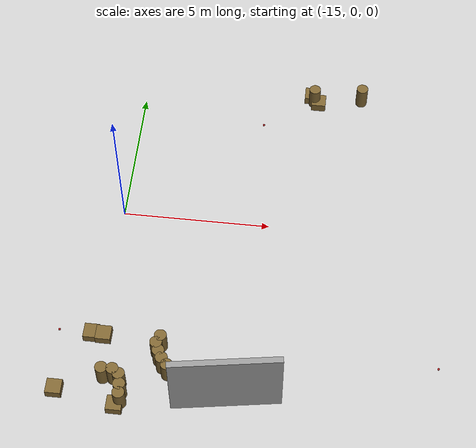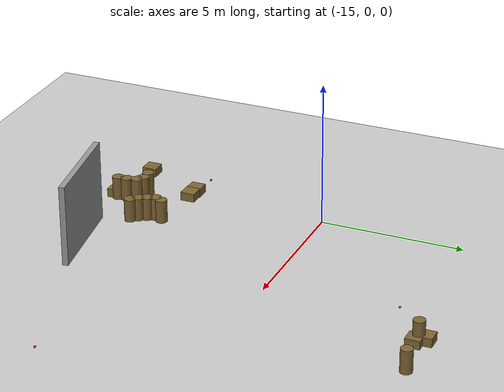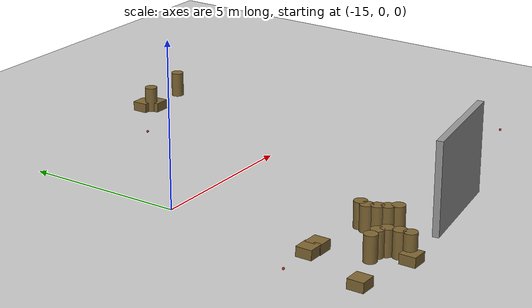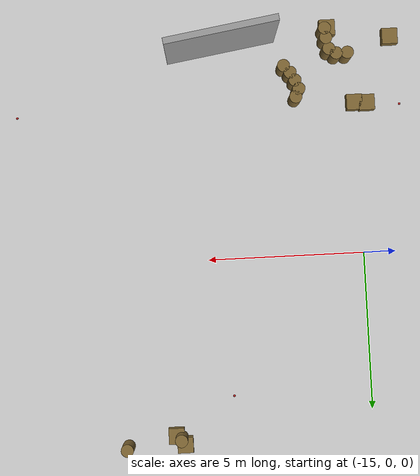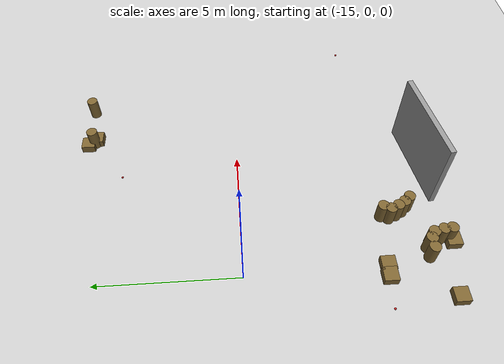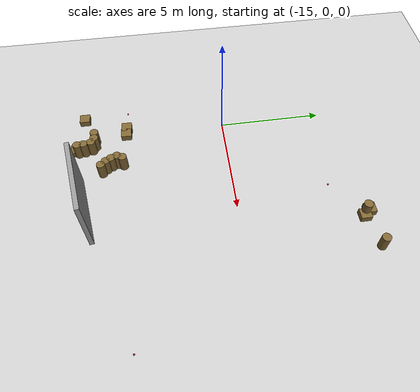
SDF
<sdf version="1.7">
 <world name="default">
  <model name="ground_plane">
   <static>1</static>
   <link name="link">
    <collision name="collision">
     <geometry><plane><normal>0 0 1</normal><size>100 100</size></plane></geometry>
     <surface><friction><ode><mu>100</mu><mu2>50</mu2></ode></friction></surface>
    </collision>
    <visual name="visual">
     <cast_shadows>0</cast_shadows>
     <geometry><plane><normal>0 0 1</normal><size>100 100</size></plane></geometry>
     <material>
      <script><uri>file://media/materials/scripts/gazebo.material</uri><name>Gazebo/Grey</name></script>
     </material>
    </visual>
   </link>
  </model>
  <model name="grey_wall_3.5">
   <link name="link">
    <pose>0 0 1.4 0 -0 0</pose>
    <inertial>
     <mass>1</mass>
     <inertia><ixx>1</ixx><ixy>0</ixy><ixz>0</ixz><iyy>1</iyy><iyz>0</iyz><izz>1</izz></inertia>
    </inertial>
    <visual name="visual">
     <cast_shadows>0</cast_shadows>
     <geometry><box><size>3.5 0.2 2.8</size></box></geometry>
     <material>
      <script>
       <uri>model://grey_wall/materials/scripts</uri>
       <uri>model://grey_wall/materials/textures</uri>
       <name>vrc/grey_wall</name>
      </script>
      <shader type="vertex"><normal_map>__default__</normal_map></shader>
      <ambient>1 1 1 1</ambient>
      <diffuse>1 1 1 1</diffuse>
      <specular>0 0 0 1</specular>
      <emissive>0 0 0 1</emissive>
     </material>
    </visual>
    <collision name="collision">
     <geometry><box><size>3.5 0.2 2.8</size></box></geometry>
     <surface>
      <friction>
       <ode><mu>1</mu><mu2>1</mu2><fdir1>0 0 0</fdir1><slip1>0</slip1><slip2>0</slip2></ode>
       <torsional>
        <coefficient>1</coefficient>
        <patch_radius>0</patch_radius>
        <surface_radius>0</surface_radius>
        <use_patch_radius>1</use_patch_radius>
        <ode><slip>0</slip></ode>
       </torsional>
      </friction>
      <bounce><restitution_coefficient>0</restitution_coefficient><threshold>1e+06</threshold></bounce>
      <contact>
       <collide_without_contact>0</collide_without_contact>
       <collide_without_contact_bitmask>1</collide_without_contact_bitmask>
       <collide_bitmask>1</collide_bitmask>
       <ode>
        <soft_cfm>0</soft_cfm>
        <soft_erp>0.2</soft_erp>
        <kp>1e+13</kp>
        <kd>1</kd>
        <max_vel>0.01</max_vel>
        <min_depth>0</min_depth>
       </ode>
       <bullet>
        <split_impulse>1</split_impulse>
        <split_impulse_penetration_threshold>-0.01</split_impulse_penetration_threshold>
        <soft_cfm>0</soft_cfm>
        <soft_erp>0.2</soft_erp>
        <kp>1e+13</kp>
        <kd>1</kd>
       </bullet>
      </contact>
     </surface>
    </collision>
   </link>
   <static>1</static>
   <pose>-10.6984 -6.76515 0 0 -0 0.156615</pose>
  </model>
  <model name="mini_cylinder_0_clone_0_clone_4">
   <link name="link">
    <inertial>
     <mass>1</mass>
     <inertia><ixx>0.145833</ixx><ixy>0</ixy><ixz>0</ixz><iyy>0.145833</iyy><iyz>0</iyz><izz>0.125</izz></inertia>
    </inertial>
    <visual name="visual">
     <geometry><cylinder><radius>0.2</radius><length>0.8</length></cylinder></geometry>
     <material>
      <script><name>Gazebo/Grey</name><uri>file://media/materials/scripts/gazebo.material</uri></script>
      <shader type="vertex"><normal_map>__default__</normal_map></shader>
      <ambient>0.5 0.4 0.2 1</ambient>
      <diffuse>0.7 0.7 0.7 1</diffuse>
      <specular>0.01 0.01 0.01 1</specular>
      <emissive>0 0 0 1</emissive>
     </material>
    </visual>
    <collision name="collision">
     <geometry><cylinder><radius>0.2</radius><length>0.8</length></cylinder></geometry>
     <surface>
      <friction>
       <ode><mu>1</mu><mu2>1</mu2><fdir1>0 0 0</fdir1><slip1>0</slip1><slip2>0</slip2></ode>
       <torsional>
        <coefficient>1</coefficient>
        <patch_radius>0</patch_radius>
        <surface_radius>0</surface_radius>
        <use_patch_radius>1</use_patch_radius>
        <ode><slip>0</slip></ode>
       </torsional>
      </friction>
      <bounce><restitution_coefficient>0</restitution_coefficient><threshold>1e+06</threshold></bounce>
      <contact>
       <collide_without_contact>0</collide_without_contact>
       <collide_without_contact_bitmask>1</collide_without_contact_bitmask>
       <collide_bitmask>1</collide_bitmask>
       <ode>
        <soft_cfm>0</soft_cfm>
        <soft_erp>0.2</soft_erp>
        <kp>1e+13</kp>
        <kd>1</kd>
        <max_vel>0.01</max_vel>
        <min_depth>0</min_depth>
       </ode>
       <bullet>
        <split_impulse>1</split_impulse>
        <split_impulse_penetration_threshold>-0.01</split_impulse_penetration_threshold>
        <soft_cfm>0</soft_cfm>
        <soft_erp>0.2</soft_erp>
        <kp>1e+13</kp>
        <kd>1</kd>
       </bullet>
      </contact>
     </surface>
    </collision>
   </link>
   <static>1</static>
   <pose>-8.86632 5.59316 0.4 0 -0 0</pose>
  </model>
  <model name="target_2">
   <link name="link">
    <pose>0 0 0.0375 0 -0 0</pose>
    <inertial>
     <mass>0.1467</mass>
     <inertia>
      <ixx>8.25187e-05</ixx>
      <ixy>0</ixy>
      <ixz>0</ixz>
      <iyy>8.25187e-05</iyy>
      <iyz>0</iyz>
      <izz>8.25187e-05</izz>
     </inertia>
    </inertial>
    <velocity_decay><linear>0</linear><angular>0.005</angular></velocity_decay>
    <visual name="visual">
     <geometry><sphere><radius>0.0375</radius></sphere></geometry>
     <material>
      <script><uri>file://media/materials/scripts/gazebo.material</uri><name>Gazebo/Red</name></script>
      <shader type="pixel"/>
     </material>
    </visual>
    <collision name="collision">
     <geometry><sphere><radius>0.0375</radius></sphere></geometry>
     <surface>
      <friction>
       <ode><mu>1</mu><mu2>1</mu2><fdir1>0 0 0</fdir1><slip1>0</slip1><slip2>0</slip2></ode>
       <torsional>
        <coefficient>1</coefficient>
        <patch_radius>0</patch_radius>
        <surface_radius>0.01</surface_radius>
        <use_patch_radius>0</use_patch_radius>
        <ode><slip>0</slip></ode>
       </torsional>
      </friction>
      <bounce><restitution_coefficient>0</restitution_coefficient><threshold>1e+06</threshold></bounce>
      <contact>
       <collide_without_contact>0</collide_without_contact>
       <collide_without_contact_bitmask>1</collide_without_contact_bitmask>
       <collide_bitmask>1</collide_bitmask>
       <ode>
        <soft_cfm>0</soft_cfm>
        <soft_erp>0.2</soft_erp>
        <kp>100000</kp>
        <kd>100</kd>
        <max_vel>100</max_vel>
        <min_depth>0.001</min_depth>
       </ode>
       <bullet>
        <split_impulse>1</split_impulse>
        <split_impulse_penetration_threshold>-0.01</split_impulse_penetration_threshold>
        <soft_cfm>0</soft_cfm>
        <soft_erp>0.2</soft_erp>
        <kp>100000</kp>
        <kd>100</kd>
       </bullet>
      </contact>
     </surface>
    </collision>
   </link>
   <static>0</static>
   <pose>-10.6016 4.37211 -0.001014 0 -0 0</pose>
  </model>
  <model name="target_4">
   <link name="link">
    <pose>0 0 0.0375 0 -0 0</pose>
    <inertial>
     <mass>0.1467</mass>
     <inertia>
      <ixx>8.25187e-05</ixx>
      <ixy>0</ixy>
      <ixz>0</ixz>
      <iyy>8.25187e-05</iyy>
      <iyz>0</iyz>
      <izz>8.25187e-05</izz>
     </inertia>
    </inertial>
    <velocity_decay><linear>0</linear><angular>0.005</angular></velocity_decay>
    <visual name="visual">
     <geometry><sphere><radius>0.0375</radius></sphere></geometry>
     <material>
      <script><uri>file://media/materials/scripts/gazebo.material</uri><name>Gazebo/Red</name></script>
      <shader type="pixel"/>
     </material>
    </visual>
    <collision name="collision">
     <geometry><sphere><radius>0.0375</radius></sphere></geometry>
     <surface>
      <friction>
       <ode><mu>1</mu><mu2>1</mu2><fdir1>0 0 0</fdir1><slip1>0</slip1><slip2>0</slip2></ode>
       <torsional>
        <coefficient>1</coefficient>
        <patch_radius>0</patch_radius>
        <surface_radius>0.01</surface_radius>
        <use_patch_radius>0</use_patch_radius>
        <ode><slip>0</slip></ode>
       </torsional>
      </friction>
      <bounce><restitution_coefficient>0</restitution_coefficient><threshold>1e+06</threshold></bounce>
      <contact>
       <collide_without_contact>0</collide_without_contact>
       <collide_without_contact_bitmask>1</collide_without_contact_bitmask>
       <collide_bitmask>1</collide_bitmask>
       <ode>
        <soft_cfm>0</soft_cfm>
        <soft_erp>0.2</soft_erp>
        <kp>100000</kp>
        <kd>100</kd>
        <max_vel>100</max_vel>
        <min_depth>0.001</min_depth>
       </ode>
       <bullet>
        <split_impulse>1</split_impulse>
        <split_impulse_penetration_threshold>-0.01</split_impulse_penetration_threshold>
        <soft_cfm>0</soft_cfm>
        <soft_erp>0.2</soft_erp>
        <kp>100000</kp>
        <kd>100</kd>
       </bullet>
      </contact>
     </surface>
    </collision>
   </link>
   <static>0</static>
   <pose>-4.06717 -4.87999 -0.001014 0 -0 0</pose>
  </model>
  <model name="target_5">
   <link name="link">
    <pose>0 0 0.0375 0 -0 0</pose>
    <inertial>
     <mass>0.1467</mass>
     <inertia>
      <ixx>8.25187e-05</ixx>
      <ixy>0</ixy>
      <ixz>0</ixz>
      <iyy>8.25187e-05</iyy>
      <iyz>0</iyz>
      <izz>8.25187e-05</izz>
     </inertia>
    </inertial>
    <velocity_decay><linear>0</linear><angular>0.005</angular></velocity_decay>
    <visual name="visual">
     <geometry><sphere><radius>0.0375</radius></sphere></geometry>
     <material>
      <script><uri>file://media/materials/scripts/gazebo.material</uri><name>Gazebo/Red</name></script>
      <shader type="pixel"/>
     </material>
    </visual>
    <collision name="collision">
     <geometry><sphere><radius>0.0375</radius></sphere></geometry>
     <surface>
      <friction>
       <ode><mu>1</mu><mu2>1</mu2><fdir1>0 0 0</fdir1><slip1>0</slip1><slip2>0</slip2></ode>
       <torsional>
        <coefficient>1</coefficient>
        <patch_radius>0</patch_radius>
        <surface_radius>0.01</surface_radius>
        <use_patch_radius>0</use_patch_radius>
        <ode><slip>0</slip></ode>
       </torsional>
      </friction>
      <bounce><restitution_coefficient>0</restitution_coefficient><threshold>1e+06</threshold></bounce>
      <contact>
       <collide_without_contact>0</collide_without_contact>
       <collide_without_contact_bitmask>1</collide_without_contact_bitmask>
       <collide_bitmask>1</collide_bitmask>
       <ode>
        <soft_cfm>0</soft_cfm>
        <soft_erp>0.2</soft_erp>
        <kp>100000</kp>
        <kd>100</kd>
        <max_vel>100</max_vel>
        <min_depth>0.001</min_depth>
       </ode>
       <bullet>
        <split_impulse>1</split_impulse>
        <split_impulse_penetration_threshold>-0.01</split_impulse_penetration_threshold>
        <soft_cfm>0</soft_cfm>
        <soft_erp>0.2</soft_erp>
        <kp>100000</kp>
        <kd>100</kd>
       </bullet>
      </contact>
     </surface>
    </collision>
   </link>
   <static>0</static>
   <pose>-16.3973 -4.73224 -0.001014 0 -0 0</pose>
  </model>
  <model name="mini_box_clone_clone_0_clone_2">
   <link name="link">
    <inertial>
     <mass>1</mass>
     <inertia>
      <ixx>0.166667</ixx>
      <ixy>0</ixy>
      <ixz>0</ixz>
      <iyy>0.166667</iyy>
      <iyz>0</iyz>
      <izz>0.166667</izz>
     </inertia>
    </inertial>
    <visual name="visual">
     <geometry><box><size>0.5 0.5 0.3</size></box></geometry>
     <material>
      <script><name>Gazebo/Grey</name><uri>file://media/materials/scripts/gazebo.material</uri></script>
      <shader type="vertex"><normal_map>__default__</normal_map></shader>
      <ambient>0.5 0.4 0.2 1</ambient>
      <diffuse>0.7 0.7 0.7 1</diffuse>
      <specular>0.01 0.01 0.01 1</specular>
      <emissive>0 0 0 1</emissive>
     </material>
    </visual>
    <collision name="collision">
     <geometry><box><size>0.5 0.5 0.3</size></box></geometry>
     <surface>
      <friction>
       <ode><mu>1</mu><mu2>1</mu2><fdir1>0 0 0</fdir1><slip1>0</slip1><slip2>0</slip2></ode>
       <torsional>
        <coefficient>1</coefficient>
        <patch_radius>0</patch_radius>
        <surface_radius>0</surface_radius>
        <use_patch_radius>1</use_patch_radius>
        <ode><slip>0</slip></ode>
       </torsional>
      </friction>
      <bounce><restitution_coefficient>0</restitution_coefficient><threshold>1e+06</threshold></bounce>
      <contact>
       <collide_without_contact>0</collide_without_contact>
       <collide_without_contact_bitmask>1</collide_without_contact_bitmask>
       <collide_bitmask>1</collide_bitmask>
       <ode>
        <soft_cfm>0</soft_cfm>
        <soft_erp>0.2</soft_erp>
        <kp>1e+13</kp>
        <kd>1</kd>
        <max_vel>0.01</max_vel>
        <min_depth>0</min_depth>
       </ode>
       <bullet>
        <split_impulse>1</split_impulse>
        <split_impulse_penetration_threshold>-0.01</split_impulse_penetration_threshold>
        <soft_cfm>0</soft_cfm>
        <soft_erp>0.2</soft_erp>
        <kp>1e+13</kp>
        <kd>1</kd>
       </bullet>
      </contact>
     </surface>
    </collision>
   </link>
   <static>1</static>
   <pose>-8.96737 5.81236 0.15 0 -0 0</pose>
  </model>
  <model name="mini_box_clone_clone_0_clone_3">
   <link name="link">
    <inertial>
     <mass>1</mass>
     <inertia>
      <ixx>0.166667</ixx>
      <ixy>0</ixy>
      <ixz>0</ixz>
      <iyy>0.166667</iyy>
      <iyz>0</iyz>
      <izz>0.166667</izz>
     </inertia>
    </inertial>
    <visual name="visual">
     <geometry><box><size>0.5 0.5 0.3</size></box></geometry>
     <material>
      <script><name>Gazebo/Grey</name><uri>file://media/materials/scripts/gazebo.material</uri></script>
      <shader type="vertex"><normal_map>__default__</normal_map></shader>
      <ambient>0.5 0.4 0.2 1</ambient>
      <diffuse>0.7 0.7 0.7 1</diffuse>
      <specular>0.01 0.01 0.01 1</specular>
      <emissive>0 0 0 1</emissive>
     </material>
    </visual>
    <collision name="collision">
     <geometry><box><size>0.5 0.5 0.3</size></box></geometry>
     <surface>
      <friction>
       <ode><mu>1</mu><mu2>1</mu2><fdir1>0 0 0</fdir1><slip1>0</slip1><slip2>0</slip2></ode>
       <torsional>
        <coefficient>1</coefficient>
        <patch_radius>0</patch_radius>
        <surface_radius>0</surface_radius>
        <use_patch_radius>1</use_patch_radius>
        <ode><slip>0</slip></ode>
       </torsional>
      </friction>
      <bounce><restitution_coefficient>0</restitution_coefficient><threshold>1e+06</threshold></bounce>
      <contact>
       <collide_without_contact>0</collide_without_contact>
       <collide_without_contact_bitmask>1</collide_without_contact_bitmask>
       <collide_bitmask>1</collide_bitmask>
       <ode>
        <soft_cfm>0</soft_cfm>
        <soft_erp>0.2</soft_erp>
        <kp>1e+13</kp>
        <kd>1</kd>
        <max_vel>0.01</max_vel>
        <min_depth>0</min_depth>
       </ode>
       <bullet>
        <split_impulse>1</split_impulse>
        <split_impulse_penetration_threshold>-0.01</split_impulse_penetration_threshold>
        <soft_cfm>0</soft_cfm>
        <soft_erp>0.2</soft_erp>
        <kp>1e+13</kp>
        <kd>1</kd>
       </bullet>
      </contact>
     </surface>
    </collision>
   </link>
   <static>1</static>
   <pose>-8.70264 5.52119 0.15 0 -0 0</pose>
  </model>
  <model name="mini_box_clone_clone_0_clone_54">
   <link name="link">
    <inertial>
     <mass>1</mass>
     <inertia>
      <ixx>0.166667</ixx>
      <ixy>0</ixy>
      <ixz>0</ixz>
      <iyy>0.166667</iyy>
      <iyz>0</iyz>
      <izz>0.166667</izz>
     </inertia>
    </inertial>
    <visual name="visual">
     <geometry><box><size>0.5 0.5 0.3</size></box></geometry>
     <material>
      <script><name>Gazebo/Grey</name><uri>file://media/materials/scripts/gazebo.material</uri></script>
      <shader type="vertex"><normal_map>__default__</normal_map></shader>
      <ambient>0.5 0.4 0.2 1</ambient>
      <diffuse>0.7 0.7 0.7 1</diffuse>
      <specular>0.01 0.01 0.01 1</specular>
      <emissive>0 0 0 1</emissive>
     </material>
    </visual>
    <collision name="collision">
     <geometry><box><size>0.5 0.5 0.3</size></box></geometry>
     <surface>
      <friction>
       <ode><mu>1</mu><mu2>1</mu2><fdir1>0 0 0</fdir1><slip1>0</slip1><slip2>0</slip2></ode>
       <torsional>
        <coefficient>1</coefficient>
        <patch_radius>0</patch_radius>
        <surface_radius>0</surface_radius>
        <use_patch_radius>1</use_patch_radius>
        <ode><slip>0</slip></ode>
       </torsional>
      </friction>
      <bounce><restitution_coefficient>0</restitution_coefficient><threshold>1e+06</threshold></bounce>
      <contact>
       <collide_without_contact>0</collide_without_contact>
       <collide_without_contact_bitmask>1</collide_without_contact_bitmask>
       <collide_bitmask>1</collide_bitmask>
       <ode>
        <soft_cfm>0</soft_cfm>
        <soft_erp>0.2</soft_erp>
        <kp>1e+13</kp>
        <kd>1</kd>
        <max_vel>0.01</max_vel>
        <min_depth>0</min_depth>
       </ode>
       <bullet>
        <split_impulse>1</split_impulse>
        <split_impulse_penetration_threshold>-0.01</split_impulse_penetration_threshold>
        <soft_cfm>0</soft_cfm>
        <soft_erp>0.2</soft_erp>
        <kp>1e+13</kp>
        <kd>1</kd>
       </bullet>
      </contact>
     </surface>
    </collision>
   </link>
   <static>1</static>
   <pose>-16.157 -6.8938 0.15 0 -0 0</pose>
  </model>
  <model name="mini_box_clone_clone_0_clone_56">
   <link name="link">
    <inertial>
     <mass>1</mass>
     <inertia>
      <ixx>0.166667</ixx>
      <ixy>0</ixy>
      <ixz>0</ixz>
      <iyy>0.166667</iyy>
      <iyz>0</iyz>
      <izz>0.166667</izz>
     </inertia>
    </inertial>
    <visual name="visual">
     <geometry><box><size>0.5 0.5 0.3</size></box></geometry>
     <material>
      <script><name>Gazebo/Grey</name><uri>file://media/materials/scripts/gazebo.material</uri></script>
      <shader type="vertex"><normal_map>__default__</normal_map></shader>
      <ambient>0.5 0.4 0.2 1</ambient>
      <diffuse>0.7 0.7 0.7 1</diffuse>
      <specular>0.01 0.01 0.01 1</specular>
      <emissive>0 0 0 1</emissive>
     </material>
    </visual>
    <collision name="collision">
     <geometry><box><size>0.5 0.5 0.3</size></box></geometry>
     <surface>
      <friction>
       <ode><mu>1</mu><mu2>1</mu2><fdir1>0 0 0</fdir1><slip1>0</slip1><slip2>0</slip2></ode>
       <torsional>
        <coefficient>1</coefficient>
        <patch_radius>0</patch_radius>
        <surface_radius>0</surface_radius>
        <use_patch_radius>1</use_patch_radius>
        <ode><slip>0</slip></ode>
       </torsional>
      </friction>
      <bounce><restitution_coefficient>0</restitution_coefficient><threshold>1e+06</threshold></bounce>
      <contact>
       <collide_without_contact>0</collide_without_contact>
       <collide_without_contact_bitmask>1</collide_without_contact_bitmask>
       <collide_bitmask>1</collide_bitmask>
       <ode>
        <soft_cfm>0</soft_cfm>
        <soft_erp>0.2</soft_erp>
        <kp>1e+13</kp>
        <kd>1</kd>
        <max_vel>0.01</max_vel>
        <min_depth>0</min_depth>
       </ode>
       <bullet>
        <split_impulse>1</split_impulse>
        <split_impulse_penetration_threshold>-0.01</split_impulse_penetration_threshold>
        <soft_cfm>0</soft_cfm>
        <soft_erp>0.2</soft_erp>
        <kp>1e+13</kp>
        <kd>1</kd>
       </bullet>
      </contact>
     </surface>
    </collision>
   </link>
   <static>1</static>
   <pose>-15.3116 -4.80484 0.15 0 -0 0</pose>
  </model>
  <model name="mini_box_clone_clone_0_clone_57">
   <link name="link">
    <inertial>
     <mass>1</mass>
     <inertia>
      <ixx>0.166667</ixx>
      <ixy>0</ixy>
      <ixz>0</ixz>
      <iyy>0.166667</iyy>
      <iyz>0</iyz>
      <izz>0.166667</izz>
     </inertia>
    </inertial>
    <visual name="visual">
     <geometry><box><size>0.5 0.5 0.3</size></box></geometry>
     <material>
      <script><name>Gazebo/Grey</name><uri>file://media/materials/scripts/gazebo.material</uri></script>
      <shader type="vertex"><normal_map>__default__</normal_map></shader>
      <ambient>0.5 0.4 0.2 1</ambient>
      <diffuse>0.7 0.7 0.7 1</diffuse>
      <specular>0.01 0.01 0.01 1</specular>
      <emissive>0 0 0 1</emissive>
     </material>
    </visual>
    <collision name="collision">
     <geometry><box><size>0.5 0.5 0.3</size></box></geometry>
     <surface>
      <friction>
       <ode><mu>1</mu><mu2>1</mu2><fdir1>0 0 0</fdir1><slip1>0</slip1><slip2>0</slip2></ode>
       <torsional>
        <coefficient>1</coefficient>
        <patch_radius>0</patch_radius>
        <surface_radius>0</surface_radius>
        <use_patch_radius>1</use_patch_radius>
        <ode><slip>0</slip></ode>
       </torsional>
      </friction>
      <bounce><restitution_coefficient>0</restitution_coefficient><threshold>1e+06</threshold></bounce>
      <contact>
       <collide_without_contact>0</collide_without_contact>
       <collide_without_contact_bitmask>1</collide_without_contact_bitmask>
       <collide_bitmask>1</collide_bitmask>
       <ode>
        <soft_cfm>0</soft_cfm>
        <soft_erp>0.2</soft_erp>
        <kp>1e+13</kp>
        <kd>1</kd>
        <max_vel>0.01</max_vel>
        <min_depth>0</min_depth>
       </ode>
       <bullet>
        <split_impulse>1</split_impulse>
        <split_impulse_penetration_threshold>-0.01</split_impulse_penetration_threshold>
        <soft_cfm>0</soft_cfm>
        <soft_erp>0.2</soft_erp>
        <kp>1e+13</kp>
        <kd>1</kd>
       </bullet>
      </contact>
     </surface>
    </collision>
   </link>
   <static>1</static>
   <pose>-14.9135 -4.82948 0.15 0 -0 0</pose>
  </model>
  <model name="mini_box_clone_clone_0_clone_60">
   <link name="link">
    <inertial>
     <mass>1</mass>
     <inertia>
      <ixx>0.166667</ixx>
      <ixy>0</ixy>
      <ixz>0</ixz>
      <iyy>0.166667</iyy>
      <iyz>0</iyz>
      <izz>0.166667</izz>
     </inertia>
    </inertial>
    <visual name="visual">
     <geometry><box><size>0.5 0.5 0.3</size></box></geometry>
     <material>
      <script><name>Gazebo/Grey</name><uri>file://media/materials/scripts/gazebo.material</uri></script>
      <shader type="vertex"><normal_map>__default__</normal_map></shader>
      <ambient>0.5 0.4 0.2 1</ambient>
      <diffuse>0.7 0.7 0.7 1</diffuse>
      <specular>0.01 0.01 0.01 1</specular>
      <emissive>0 0 0 1</emissive>
     </material>
    </visual>
    <collision name="collision">
     <geometry><box><size>0.5 0.5 0.3</size></box></geometry>
     <surface>
      <friction>
       <ode><mu>1</mu><mu2>1</mu2><fdir1>0 0 0</fdir1><slip1>0</slip1><slip2>0</slip2></ode>
       <torsional>
        <coefficient>1</coefficient>
        <patch_radius>0</patch_radius>
        <surface_radius>0</surface_radius>
        <use_patch_radius>1</use_patch_radius>
        <ode><slip>0</slip></ode>
       </torsional>
      </friction>
      <bounce><restitution_coefficient>0</restitution_coefficient><threshold>1e+06</threshold></bounce>
      <contact>
       <collide_without_contact>0</collide_without_contact>
       <collide_without_contact_bitmask>1</collide_without_contact_bitmask>
       <collide_bitmask>1</collide_bitmask>
       <ode>
        <soft_cfm>0</soft_cfm>
        <soft_erp>0.2</soft_erp>
        <kp>1e+13</kp>
        <kd>1</kd>
        <max_vel>0.01</max_vel>
        <min_depth>0</min_depth>
       </ode>
       <bullet>
        <split_impulse>1</split_impulse>
        <split_impulse_penetration_threshold>-0.01</split_impulse_penetration_threshold>
        <soft_cfm>0</soft_cfm>
        <soft_erp>0.2</soft_erp>
        <kp>1e+13</kp>
        <kd>1</kd>
       </bullet>
      </contact>
     </surface>
    </collision>
   </link>
   <static>1</static>
   <pose>-14.1676 -7.2666 0.15 0 -0 0</pose>
  </model>
  <model name="mini_cylinder_0_clone_0_clone_19">
   <link name="link">
    <inertial>
     <mass>1</mass>
     <inertia><ixx>0.145833</ixx><ixy>0</ixy><ixz>0</ixz><iyy>0.145833</iyy><iyz>0</iyz><izz>0.125</izz></inertia>
    </inertial>
    <visual name="visual">
     <geometry><cylinder><radius>0.2</radius><length>0.8</length></cylinder></geometry>
     <material>
      <script><name>Gazebo/Grey</name><uri>file://media/materials/scripts/gazebo.material</uri></script>
      <shader type="vertex"><normal_map>__default__</normal_map></shader>
      <ambient>0.5 0.4 0.2 1</ambient>
      <diffuse>0.7 0.7 0.7 1</diffuse>
      <specular>0.01 0.01 0.01 1</specular>
      <emissive>0 0 0 1</emissive>
     </material>
    </visual>
    <collision name="collision">
     <geometry><cylinder><radius>0.2</radius><length>0.8</length></cylinder></geometry>
     <surface>
      <friction>
       <ode><mu>1</mu><mu2>1</mu2><fdir1>0 0 0</fdir1><slip1>0</slip1><slip2>0</slip2></ode>
       <torsional>
        <coefficient>1</coefficient>
        <patch_radius>0</patch_radius>
        <surface_radius>0</surface_radius>
        <use_patch_radius>1</use_patch_radius>
        <ode><slip>0</slip></ode>
       </torsional>
      </friction>
      <bounce><restitution_coefficient>0</restitution_coefficient><threshold>1e+06</threshold></bounce>
      <contact>
       <collide_without_contact>0</collide_without_contact>
       <collide_without_contact_bitmask>1</collide_without_contact_bitmask>
       <collide_bitmask>1</collide_bitmask>
       <ode>
        <soft_cfm>0</soft_cfm>
        <soft_erp>0.2</soft_erp>
        <kp>1e+13</kp>
        <kd>1</kd>
        <max_vel>0.01</max_vel>
        <min_depth>0</min_depth>
       </ode>
       <bullet>
        <split_impulse>1</split_impulse>
        <split_impulse_penetration_threshold>-0.01</split_impulse_penetration_threshold>
        <soft_cfm>0</soft_cfm>
        <soft_erp>0.2</soft_erp>
        <kp>1e+13</kp>
        <kd>1</kd>
       </bullet>
      </contact>
     </surface>
    </collision>
   </link>
   <static>1</static>
   <pose>-7.16146 5.80257 0.4 0 -0 0</pose>
  </model>
  <model name="mini_cylinder_0_clone_0_clone_31">
   <link name="link">
    <inertial>
     <mass>1</mass>
     <inertia><ixx>0.145833</ixx><ixy>0</ixy><ixz>0</ixz><iyy>0.145833</iyy><iyz>0</iyz><izz>0.125</izz></inertia>
    </inertial>
    <visual name="visual">
     <geometry><cylinder><radius>0.2</radius><length>0.8</length></cylinder></geometry>
     <material>
      <script><name>Gazebo/Grey</name><uri>file://media/materials/scripts/gazebo.material</uri></script>
      <shader type="vertex"><normal_map>__default__</normal_map></shader>
      <ambient>0.5 0.4 0.2 1</ambient>
      <diffuse>0.7 0.7 0.7 1</diffuse>
      <specular>0.01 0.01 0.01 1</specular>
      <emissive>0 0 0 1</emissive>
     </material>
    </visual>
    <collision name="collision">
     <geometry><cylinder><radius>0.2</radius><length>0.8</length></cylinder></geometry>
     <surface>
      <friction>
       <ode><mu>1</mu><mu2>1</mu2><fdir1>0 0 0</fdir1><slip1>0</slip1><slip2>0</slip2></ode>
       <torsional>
        <coefficient>1</coefficient>
        <patch_radius>0</patch_radius>
        <surface_radius>0</surface_radius>
        <use_patch_radius>1</use_patch_radius>
        <ode><slip>0</slip></ode>
       </torsional>
      </friction>
      <bounce><restitution_coefficient>0</restitution_coefficient><threshold>1e+06</threshold></bounce>
      <contact>
       <collide_without_contact>0</collide_without_contact>
       <collide_without_contact_bitmask>1</collide_without_contact_bitmask>
       <collide_bitmask>1</collide_bitmask>
       <ode>
        <soft_cfm>0</soft_cfm>
        <soft_erp>0.2</soft_erp>
        <kp>1e+13</kp>
        <kd>1</kd>
        <max_vel>0.01</max_vel>
        <min_depth>0</min_depth>
       </ode>
       <bullet>
        <split_impulse>1</split_impulse>
        <split_impulse_penetration_threshold>-0.01</split_impulse_penetration_threshold>
        <soft_cfm>0</soft_cfm>
        <soft_erp>0.2</soft_erp>
        <kp>1e+13</kp>
        <kd>1</kd>
       </bullet>
      </contact>
     </surface>
    </collision>
   </link>
   <static>1</static>
   <pose>-14.0166 -7.13096 0.4 0 -0 0</pose>
  </model>
  <model name="mini_cylinder_0_clone_0_clone_32">
   <link name="link">
    <inertial>
     <mass>1</mass>
     <inertia><ixx>0.145833</ixx><ixy>0</ixy><ixz>0</ixz><iyy>0.145833</iyy><iyz>0</iyz><izz>0.125</izz></inertia>
    </inertial>
    <visual name="visual">
     <geometry><cylinder><radius>0.2</radius><length>0.8</length></cylinder></geometry>
     <material>
      <script><name>Gazebo/Grey</name><uri>file://media/materials/scripts/gazebo.material</uri></script>
      <shader type="vertex"><normal_map>__default__</normal_map></shader>
      <ambient>0.5 0.4 0.2 1</ambient>
      <diffuse>0.7 0.7 0.7 1</diffuse>
      <specular>0.01 0.01 0.01 1</specular>
      <emissive>0 0 0 1</emissive>
     </material>
    </visual>
    <collision name="collision">
     <geometry><cylinder><radius>0.2</radius><length>0.8</length></cylinder></geometry>
     <surface>
      <friction>
       <ode><mu>1</mu><mu2>1</mu2><fdir1>0 0 0</fdir1><slip1>0</slip1><slip2>0</slip2></ode>
       <torsional>
        <coefficient>1</coefficient>
        <patch_radius>0</patch_radius>
        <surface_radius>0</surface_radius>
        <use_patch_radius>1</use_patch_radius>
        <ode><slip>0</slip></ode>
       </torsional>
      </friction>
      <bounce><restitution_coefficient>0</restitution_coefficient><threshold>1e+06</threshold></bounce>
      <contact>
       <collide_without_contact>0</collide_without_contact>
       <collide_without_contact_bitmask>1</collide_without_contact_bitmask>
       <collide_bitmask>1</collide_bitmask>
       <ode>
        <soft_cfm>0</soft_cfm>
        <soft_erp>0.2</soft_erp>
        <kp>1e+13</kp>
        <kd>1</kd>
        <max_vel>0.01</max_vel>
        <min_depth>0</min_depth>
       </ode>
       <bullet>
        <split_impulse>1</split_impulse>
        <split_impulse_penetration_threshold>-0.01</split_impulse_penetration_threshold>
        <soft_cfm>0</soft_cfm>
        <soft_erp>0.2</soft_erp>
        <kp>1e+13</kp>
        <kd>1</kd>
       </bullet>
      </contact>
     </surface>
    </collision>
   </link>
   <static>1</static>
   <pose>-14.0422 -6.82891 0.4 0 -0 0</pose>
  </model>
  <model name="mini_cylinder_0_clone_0_clone_33">
   <link name="link">
    <inertial>
     <mass>1</mass>
     <inertia><ixx>0.145833</ixx><ixy>0</ixy><ixz>0</ixz><iyy>0.145833</iyy><iyz>0</iyz><izz>0.125</izz></inertia>
    </inertial>
    <visual name="visual">
     <geometry><cylinder><radius>0.2</radius><length>0.8</length></cylinder></geometry>
     <material>
      <script><name>Gazebo/Grey</name><uri>file://media/materials/scripts/gazebo.material</uri></script>
      <shader type="vertex"><normal_map>__default__</normal_map></shader>
      <ambient>0.5 0.4 0.2 1</ambient>
      <diffuse>0.7 0.7 0.7 1</diffuse>
      <specular>0.01 0.01 0.01 1</specular>
      <emissive>0 0 0 1</emissive>
     </material>
    </visual>
    <collision name="collision">
     <geometry><cylinder><radius>0.2</radius><length>0.8</length></cylinder></geometry>
     <surface>
      <friction>
       <ode><mu>1</mu><mu2>1</mu2><fdir1>0 0 0</fdir1><slip1>0</slip1><slip2>0</slip2></ode>
       <torsional>
        <coefficient>1</coefficient>
        <patch_radius>0</patch_radius>
        <surface_radius>0</surface_radius>
        <use_patch_radius>1</use_patch_radius>
        <ode><slip>0</slip></ode>
       </torsional>
      </friction>
      <bounce><restitution_coefficient>0</restitution_coefficient><threshold>1e+06</threshold></bounce>
      <contact>
       <collide_without_contact>0</collide_without_contact>
       <collide_without_contact_bitmask>1</collide_without_contact_bitmask>
       <collide_bitmask>1</collide_bitmask>
       <ode>
        <soft_cfm>0</soft_cfm>
        <soft_erp>0.2</soft_erp>
        <kp>1e+13</kp>
        <kd>1</kd>
        <max_vel>0.01</max_vel>
        <min_depth>0</min_depth>
       </ode>
       <bullet>
        <split_impulse>1</split_impulse>
        <split_impulse_penetration_threshold>-0.01</split_impulse_penetration_threshold>
        <soft_cfm>0</soft_cfm>
        <soft_erp>0.2</soft_erp>
        <kp>1e+13</kp>
        <kd>1</kd>
       </bullet>
      </contact>
     </surface>
    </collision>
   </link>
   <static>1</static>
   <pose>-14.1177 -6.4763 0.4 0 -0 0</pose>
  </model>
  <model name="mini_cylinder_0_clone_0_clone_34">
   <link name="link">
    <inertial>
     <mass>1</mass>
     <inertia><ixx>0.145833</ixx><ixy>0</ixy><ixz>0</ixz><iyy>0.145833</iyy><iyz>0</iyz><izz>0.125</izz></inertia>
    </inertial>
    <visual name="visual">
     <geometry><cylinder><radius>0.2</radius><length>0.8</length></cylinder></geometry>
     <material>
      <script><name>Gazebo/Grey</name><uri>file://media/materials/scripts/gazebo.material</uri></script>
      <shader type="vertex"><normal_map>__default__</normal_map></shader>
      <ambient>0.5 0.4 0.2 1</ambient>
      <diffuse>0.7 0.7 0.7 1</diffuse>
      <specular>0.01 0.01 0.01 1</specular>
      <emissive>0 0 0 1</emissive>
     </material>
    </visual>
    <collision name="collision">
     <geometry><cylinder><radius>0.2</radius><length>0.8</length></cylinder></geometry>
     <surface>
      <friction>
       <ode><mu>1</mu><mu2>1</mu2><fdir1>0 0 0</fdir1><slip1>0</slip1><slip2>0</slip2></ode>
       <torsional>
        <coefficient>1</coefficient>
        <patch_radius>0</patch_radius>
        <surface_radius>0</surface_radius>
        <use_patch_radius>1</use_patch_radius>
        <ode><slip>0</slip></ode>
       </torsional>
      </friction>
      <bounce><restitution_coefficient>0</restitution_coefficient><threshold>1e+06</threshold></bounce>
      <contact>
       <collide_without_contact>0</collide_without_contact>
       <collide_without_contact_bitmask>1</collide_without_contact_bitmask>
       <collide_bitmask>1</collide_bitmask>
       <ode>
        <soft_cfm>0</soft_cfm>
        <soft_erp>0.2</soft_erp>
        <kp>1e+13</kp>
        <kd>1</kd>
        <max_vel>0.01</max_vel>
        <min_depth>0</min_depth>
       </ode>
       <bullet>
        <split_impulse>1</split_impulse>
        <split_impulse_penetration_threshold>-0.01</split_impulse_penetration_threshold>
        <soft_cfm>0</soft_cfm>
        <soft_erp>0.2</soft_erp>
        <kp>1e+13</kp>
        <kd>1</kd>
       </bullet>
      </contact>
     </surface>
    </collision>
   </link>
   <static>1</static>
   <pose>-14.3442 -6.32496 0.4 0 -0 0</pose>
  </model>
  <model name="mini_cylinder_0_clone_0_clone_35">
   <link name="link">
    <inertial>
     <mass>1</mass>
     <inertia><ixx>0.145833</ixx><ixy>0</ixy><ixz>0</ixz><iyy>0.145833</iyy><iyz>0</iyz><izz>0.125</izz></inertia>
    </inertial>
    <visual name="visual">
     <geometry><cylinder><radius>0.2</radius><length>0.8</length></cylinder></geometry>
     <material>
      <script><name>Gazebo/Grey</name><uri>file://media/materials/scripts/gazebo.material</uri></script>
      <shader type="vertex"><normal_map>__default__</normal_map></shader>
      <ambient>0.5 0.4 0.2 1</ambient>
      <diffuse>0.7 0.7 0.7 1</diffuse>
      <specular>0.01 0.01 0.01 1</specular>
      <emissive>0 0 0 1</emissive>
     </material>
    </visual>
    <collision name="collision">
     <geometry><cylinder><radius>0.2</radius><length>0.8</length></cylinder></geometry>
     <surface>
      <friction>
       <ode><mu>1</mu><mu2>1</mu2><fdir1>0 0 0</fdir1><slip1>0</slip1><slip2>0</slip2></ode>
       <torsional>
        <coefficient>1</coefficient>
        <patch_radius>0</patch_radius>
        <surface_radius>0</surface_radius>
        <use_patch_radius>1</use_patch_radius>
        <ode><slip>0</slip></ode>
       </torsional>
      </friction>
      <bounce><restitution_coefficient>0</restitution_coefficient><threshold>1e+06</threshold></bounce>
      <contact>
       <collide_without_contact>0</collide_without_contact>
       <collide_without_contact_bitmask>1</collide_without_contact_bitmask>
       <collide_bitmask>1</collide_bitmask>
       <ode>
        <soft_cfm>0</soft_cfm>
        <soft_erp>0.2</soft_erp>
        <kp>1e+13</kp>
        <kd>1</kd>
        <max_vel>0.01</max_vel>
        <min_depth>0</min_depth>
       </ode>
       <bullet>
        <split_impulse>1</split_impulse>
        <split_impulse_penetration_threshold>-0.01</split_impulse_penetration_threshold>
        <soft_cfm>0</soft_cfm>
        <soft_erp>0.2</soft_erp>
        <kp>1e+13</kp>
        <kd>1</kd>
       </bullet>
      </contact>
     </surface>
    </collision>
   </link>
   <static>1</static>
   <pose>-14.6968 -6.32496 0.4 0 -0 0</pose>
  </model>
  <model name="mini_cylinder_0_clone_0_clone_36">
   <link name="link">
    <inertial>
     <mass>1</mass>
     <inertia><ixx>0.145833</ixx><ixy>0</ixy><ixz>0</ixz><iyy>0.145833</iyy><iyz>0</iyz><izz>0.125</izz></inertia>
    </inertial>
    <visual name="visual">
     <geometry><cylinder><radius>0.2</radius><length>0.8</length></cylinder></geometry>
     <material>
      <script><name>Gazebo/Grey</name><uri>file://media/materials/scripts/gazebo.material</uri></script>
      <shader type="vertex"><normal_map>__default__</normal_map></shader>
      <ambient>0.5 0.4 0.2 1</ambient>
      <diffuse>0.7 0.7 0.7 1</diffuse>
      <specular>0.01 0.01 0.01 1</specular>
      <emissive>0 0 0 1</emissive>
     </material>
    </visual>
    <collision name="collision">
     <geometry><cylinder><radius>0.2</radius><length>0.8</length></cylinder></geometry>
     <surface>
      <friction>
       <ode><mu>1</mu><mu2>1</mu2><fdir1>0 0 0</fdir1><slip1>0</slip1><slip2>0</slip2></ode>
       <torsional>
        <coefficient>1</coefficient>
        <patch_radius>0</patch_radius>
        <surface_radius>0</surface_radius>
        <use_patch_radius>1</use_patch_radius>
        <ode><slip>0</slip></ode>
       </torsional>
      </friction>
      <bounce><restitution_coefficient>0</restitution_coefficient><threshold>1e+06</threshold></bounce>
      <contact>
       <collide_without_contact>0</collide_without_contact>
       <collide_without_contact_bitmask>1</collide_without_contact_bitmask>
       <collide_bitmask>1</collide_bitmask>
       <ode>
        <soft_cfm>0</soft_cfm>
        <soft_erp>0.2</soft_erp>
        <kp>1e+13</kp>
        <kd>1</kd>
        <max_vel>0.01</max_vel>
        <min_depth>0</min_depth>
       </ode>
       <bullet>
        <split_impulse>1</split_impulse>
        <split_impulse_penetration_threshold>-0.01</split_impulse_penetration_threshold>
        <soft_cfm>0</soft_cfm>
        <soft_erp>0.2</soft_erp>
        <kp>1e+13</kp>
        <kd>1</kd>
       </bullet>
      </contact>
     </surface>
    </collision>
   </link>
   <static>1</static>
   <pose>-12.6657 -6.00396 0.4 0 -0 0</pose>
  </model>
  <model name="mini_cylinder_0_clone_0_clone_37">
   <link name="link">
    <inertial>
     <mass>1</mass>
     <inertia><ixx>0.145833</ixx><ixy>0</ixy><ixz>0</ixz><iyy>0.145833</iyy><iyz>0</iyz><izz>0.125</izz></inertia>
    </inertial>
    <visual name="visual">
     <geometry><cylinder><radius>0.2</radius><length>0.8</length></cylinder></geometry>
     <material>
      <script><name>Gazebo/Grey</name><uri>file://media/materials/scripts/gazebo.material</uri></script>
      <shader type="vertex"><normal_map>__default__</normal_map></shader>
      <ambient>0.5 0.4 0.2 1</ambient>
      <diffuse>0.7 0.7 0.7 1</diffuse>
      <specular>0.01 0.01 0.01 1</specular>
      <emissive>0 0 0 1</emissive>
     </material>
    </visual>
    <collision name="collision">
     <geometry><cylinder><radius>0.2</radius><length>0.8</length></cylinder></geometry>
     <surface>
      <friction>
       <ode><mu>1</mu><mu2>1</mu2><fdir1>0 0 0</fdir1><slip1>0</slip1><slip2>0</slip2></ode>
       <torsional>
        <coefficient>1</coefficient>
        <patch_radius>0</patch_radius>
        <surface_radius>0</surface_radius>
        <use_patch_radius>1</use_patch_radius>
        <ode><slip>0</slip></ode>
       </torsional>
      </friction>
      <bounce><restitution_coefficient>0</restitution_coefficient><threshold>1e+06</threshold></bounce>
      <contact>
       <collide_without_contact>0</collide_without_contact>
       <collide_without_contact_bitmask>1</collide_without_contact_bitmask>
       <collide_bitmask>1</collide_bitmask>
       <ode>
        <soft_cfm>0</soft_cfm>
        <soft_erp>0.2</soft_erp>
        <kp>1e+13</kp>
        <kd>1</kd>
        <max_vel>0.01</max_vel>
        <min_depth>0</min_depth>
       </ode>
       <bullet>
        <split_impulse>1</split_impulse>
        <split_impulse_penetration_threshold>-0.01</split_impulse_penetration_threshold>
        <soft_cfm>0</soft_cfm>
        <soft_erp>0.2</soft_erp>
        <kp>1e+13</kp>
        <kd>1</kd>
       </bullet>
      </contact>
     </surface>
    </collision>
   </link>
   <static>1</static>
   <pose>-12.8599 -5.78211 0.4 0 -0 0</pose>
  </model>
  <model name="mini_cylinder_0_clone_0_clone_38">
   <link name="link">
    <inertial>
     <mass>1</mass>
     <inertia><ixx>0.145833</ixx><ixy>0</ixy><ixz>0</ixz><iyy>0.145833</iyy><iyz>0</iyz><izz>0.125</izz></inertia>
    </inertial>
    <visual name="visual">
     <geometry><cylinder><radius>0.2</radius><length>0.8</length></cylinder></geometry>
     <material>
      <script><name>Gazebo/Grey</name><uri>file://media/materials/scripts/gazebo.material</uri></script>
      <shader type="vertex"><normal_map>__default__</normal_map></shader>
      <ambient>0.5 0.4 0.2 1</ambient>
      <diffuse>0.7 0.7 0.7 1</diffuse>
      <specular>0.01 0.01 0.01 1</specular>
      <emissive>0 0 0 1</emissive>
     </material>
    </visual>
    <collision name="collision">
     <geometry><cylinder><radius>0.2</radius><length>0.8</length></cylinder></geometry>
     <surface>
      <friction>
       <ode><mu>1</mu><mu2>1</mu2><fdir1>0 0 0</fdir1><slip1>0</slip1><slip2>0</slip2></ode>
       <torsional>
        <coefficient>1</coefficient>
        <patch_radius>0</patch_radius>
        <surface_radius>0</surface_radius>
        <use_patch_radius>1</use_patch_radius>
        <ode><slip>0</slip></ode>
       </torsional>
      </friction>
      <bounce><restitution_coefficient>0</restitution_coefficient><threshold>1e+06</threshold></bounce>
      <contact>
       <collide_without_contact>0</collide_without_contact>
       <collide_without_contact_bitmask>1</collide_without_contact_bitmask>
       <collide_bitmask>1</collide_bitmask>
       <ode>
        <soft_cfm>0</soft_cfm>
        <soft_erp>0.2</soft_erp>
        <kp>1e+13</kp>
        <kd>1</kd>
        <max_vel>0.01</max_vel>
        <min_depth>0</min_depth>
       </ode>
       <bullet>
        <split_impulse>1</split_impulse>
        <split_impulse_penetration_threshold>-0.01</split_impulse_penetration_threshold>
        <soft_cfm>0</soft_cfm>
        <soft_erp>0.2</soft_erp>
        <kp>1e+13</kp>
        <kd>1</kd>
       </bullet>
      </contact>
     </surface>
    </collision>
   </link>
   <static>1</static>
   <pose>-13 -5.53243 0.4 0 -0 0</pose>
  </model>
  <model name="mini_cylinder_0_clone_0_clone_39">
   <link name="link">
    <inertial>
     <mass>1</mass>
     <inertia><ixx>0.145833</ixx><ixy>0</ixy><ixz>0</ixz><iyy>0.145833</iyy><iyz>0</iyz><izz>0.125</izz></inertia>
    </inertial>
    <visual name="visual">
     <geometry><cylinder><radius>0.2</radius><length>0.8</length></cylinder></geometry>
     <material>
      <script><name>Gazebo/Grey</name><uri>file://media/materials/scripts/gazebo.material</uri></script>
      <shader type="vertex"><normal_map>__default__</normal_map></shader>
      <ambient>0.5 0.4 0.2 1</ambient>
      <diffuse>0.7 0.7 0.7 1</diffuse>
      <specular>0.01 0.01 0.01 1</specular>
      <emissive>0 0 0 1</emissive>
     </material>
    </visual>
    <collision name="collision">
     <geometry><cylinder><radius>0.2</radius><length>0.8</length></cylinder></geometry>
     <surface>
      <friction>
       <ode><mu>1</mu><mu2>1</mu2><fdir1>0 0 0</fdir1><slip1>0</slip1><slip2>0</slip2></ode>
       <torsional>
        <coefficient>1</coefficient>
        <patch_radius>0</patch_radius>
        <surface_radius>0</surface_radius>
        <use_patch_radius>1</use_patch_radius>
        <ode><slip>0</slip></ode>
       </torsional>
      </friction>
      <bounce><restitution_coefficient>0</restitution_coefficient><threshold>1e+06</threshold></bounce>
      <contact>
       <collide_without_contact>0</collide_without_contact>
       <collide_without_contact_bitmask>1</collide_without_contact_bitmask>
       <collide_bitmask>1</collide_bitmask>
       <ode>
        <soft_cfm>0</soft_cfm>
        <soft_erp>0.2</soft_erp>
        <kp>1e+13</kp>
        <kd>1</kd>
        <max_vel>0.01</max_vel>
        <min_depth>0</min_depth>
       </ode>
       <bullet>
        <split_impulse>1</split_impulse>
        <split_impulse_penetration_threshold>-0.01</split_impulse_penetration_threshold>
        <soft_cfm>0</soft_cfm>
        <soft_erp>0.2</soft_erp>
        <kp>1e+13</kp>
        <kd>1</kd>
       </bullet>
      </contact>
     </surface>
    </collision>
   </link>
   <static>1</static>
   <pose>-13 -5 0.4 0 -0 0</pose>
  </model>
  <model name="mini_cylinder_0_clone_0_clone_40">
   <link name="link">
    <inertial>
     <mass>1</mass>
     <inertia><ixx>0.145833</ixx><ixy>0</ixy><ixz>0</ixz><iyy>0.145833</iyy><iyz>0</iyz><izz>0.125</izz></inertia>
    </inertial>
    <visual name="visual">
     <geometry><cylinder><radius>0.2</radius><length>0.8</length></cylinder></geometry>
     <material>
      <script><name>Gazebo/Grey</name><uri>file://media/materials/scripts/gazebo.material</uri></script>
      <shader type="vertex"><normal_map>__default__</normal_map></shader>
      <ambient>0.5 0.4 0.2 1</ambient>
      <diffuse>0.7 0.7 0.7 1</diffuse>
      <specular>0.01 0.01 0.01 1</specular>
      <emissive>0 0 0 1</emissive>
     </material>
    </visual>
    <collision name="collision">
     <geometry><cylinder><radius>0.2</radius><length>0.8</length></cylinder></geometry>
     <surface>
      <friction>
       <ode><mu>1</mu><mu2>1</mu2><fdir1>0 0 0</fdir1><slip1>0</slip1><slip2>0</slip2></ode>
       <torsional>
        <coefficient>1</coefficient>
        <patch_radius>0</patch_radius>
        <surface_radius>0</surface_radius>
        <use_patch_radius>1</use_patch_radius>
        <ode><slip>0</slip></ode>
       </torsional>
      </friction>
      <bounce><restitution_coefficient>0</restitution_coefficient><threshold>1e+06</threshold></bounce>
      <contact>
       <collide_without_contact>0</collide_without_contact>
       <collide_without_contact_bitmask>1</collide_without_contact_bitmask>
       <collide_bitmask>1</collide_bitmask>
       <ode>
        <soft_cfm>0</soft_cfm>
        <soft_erp>0.2</soft_erp>
        <kp>1e+13</kp>
        <kd>1</kd>
        <max_vel>0.01</max_vel>
        <min_depth>0</min_depth>
       </ode>
       <bullet>
        <split_impulse>1</split_impulse>
        <split_impulse_penetration_threshold>-0.01</split_impulse_penetration_threshold>
        <soft_cfm>0</soft_cfm>
        <soft_erp>0.2</soft_erp>
        <kp>1e+13</kp>
        <kd>1</kd>
       </bullet>
      </contact>
     </surface>
    </collision>
   </link>
   <static>1</static>
   <pose>-13.1098 -5.25508 0.4 0 -0 0</pose>
  </model>
 </world>
</sdf>
